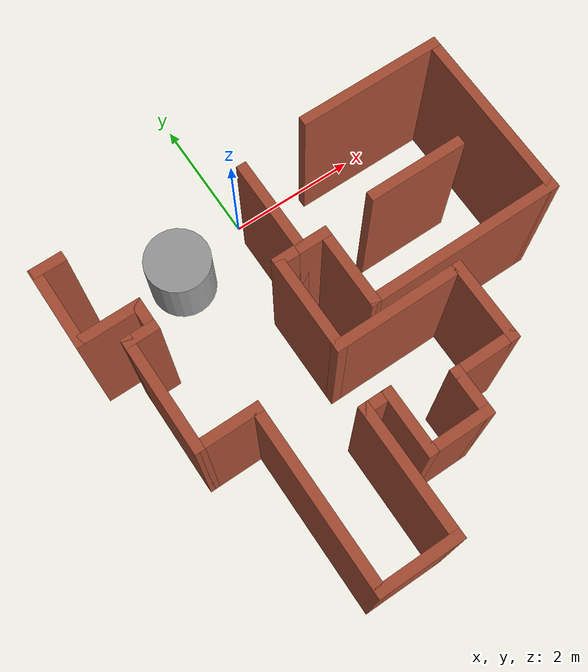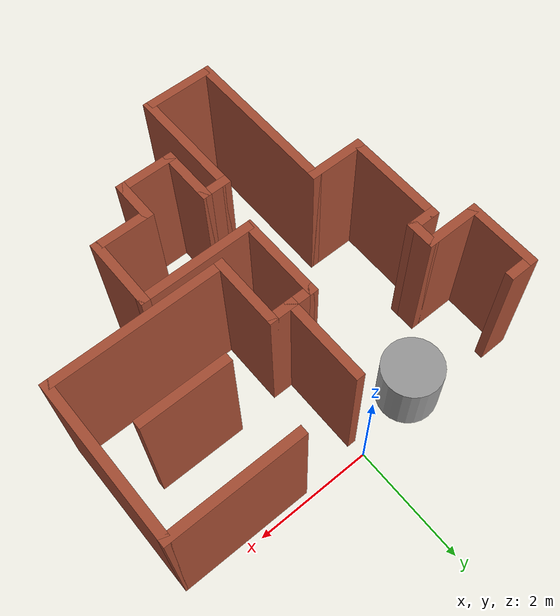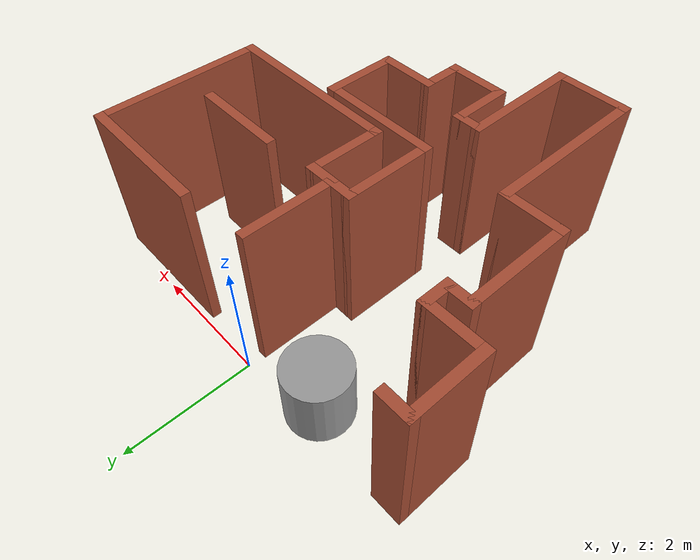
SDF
<sdf version="1.6">
 <model name="map_40">
  <link name="Wall_18">
   <pose>-2.8 -0.077977 0 0 -0 3.14159</pose>
   <visual name="Wall_18_Visual">
    <pose>0 0 1.25 0 -0 0</pose>
    <geometry><box><size>0.5 0.15 2.5</size></box></geometry>
    <material>
     <script><uri>file://media/materials/scripts/gazebo.material</uri><name>Gazebo/Bricks</name></script>
     <ambient>1 1 1 1</ambient>
     <shader type="pixel"/>
    </material>
    <meta><layer>0</layer></meta>
   </visual>
   <collision name="Wall_18_Collision">
    <pose>0 0 1.25 0 -0 0</pose>
    <geometry><box><size>0.5 0.15 2.5</size></box></geometry>
    <surface>
     <friction>
      <ode><mu>1</mu><mu2>1</mu2><fdir1>0 0 0</fdir1><slip1>0</slip1><slip2>0</slip2></ode>
      <torsional>
       <coefficient>1</coefficient>
       <patch_radius>0</patch_radius>
       <surface_radius>0</surface_radius>
       <use_patch_radius>1</use_patch_radius>
       <ode><slip>0</slip></ode>
      </torsional>
     </friction>
     <bounce><restitution_coefficient>0</restitution_coefficient><threshold>1e+06</threshold></bounce>
     <contact>
      <collide_without_contact>0</collide_without_contact>
      <collide_without_contact_bitmask>1</collide_without_contact_bitmask>
      <collide_bitmask>1</collide_bitmask>
      <ode>
       <soft_cfm>0</soft_cfm>
       <soft_erp>0.2</soft_erp>
       <kp>1e+13</kp>
       <kd>1</kd>
       <max_vel>0.01</max_vel>
       <min_depth>0</min_depth>
      </ode>
      <bullet>
       <split_impulse>1</split_impulse>
       <split_impulse_penetration_threshold>-0.01</split_impulse_penetration_threshold>
       <soft_cfm>0</soft_cfm>
       <soft_erp>0.2</soft_erp>
       <kp>1e+13</kp>
       <kd>1</kd>
      </bullet>
     </contact>
    </surface>
   </collision>
  </link>
  <link name="Wall_19">
   <pose>-2.975 -0.627977 0 0 0 -1.5708</pose>
   <visual name="Wall_19_Visual">
    <pose>0 0 1.25 0 -0 0</pose>
    <geometry><box><size>1.25 0.15 2.5</size></box></geometry>
    <material>
     <script><uri>file://media/materials/scripts/gazebo.material</uri><name>Gazebo/Bricks</name></script>
     <ambient>1 1 1 1</ambient>
     <shader type="pixel"/>
    </material>
    <meta><layer>0</layer></meta>
   </visual>
   <collision name="Wall_19_Collision">
    <pose>0 0 1.25 0 -0 0</pose>
    <geometry><box><size>1.25 0.15 2.5</size></box></geometry>
    <surface>
     <friction>
      <ode><mu>1</mu><mu2>1</mu2><fdir1>0 0 0</fdir1><slip1>0</slip1><slip2>0</slip2></ode>
      <torsional>
       <coefficient>1</coefficient>
       <patch_radius>0</patch_radius>
       <surface_radius>0</surface_radius>
       <use_patch_radius>1</use_patch_radius>
       <ode><slip>0</slip></ode>
      </torsional>
     </friction>
     <bounce><restitution_coefficient>0</restitution_coefficient><threshold>1e+06</threshold></bounce>
     <contact>
      <collide_without_contact>0</collide_without_contact>
      <collide_without_contact_bitmask>1</collide_without_contact_bitmask>
      <collide_bitmask>1</collide_bitmask>
      <ode>
       <soft_cfm>0</soft_cfm>
       <soft_erp>0.2</soft_erp>
       <kp>1e+13</kp>
       <kd>1</kd>
       <max_vel>0.01</max_vel>
       <min_depth>0</min_depth>
      </ode>
      <bullet>
       <split_impulse>1</split_impulse>
       <split_impulse_penetration_threshold>-0.01</split_impulse_penetration_threshold>
       <soft_cfm>0</soft_cfm>
       <soft_erp>0.2</soft_erp>
       <kp>1e+13</kp>
       <kd>1</kd>
      </bullet>
     </contact>
    </surface>
   </collision>
  </link>
  <link name="Wall_20">
   <pose>-2.55 -1.17798 0 0 -0 0</pose>
   <visual name="Wall_20_Visual">
    <pose>0 0 1.25 0 -0 0</pose>
    <geometry><box><size>1 0.15 2.5</size></box></geometry>
    <material>
     <script><uri>file://media/materials/scripts/gazebo.material</uri><name>Gazebo/Bricks</name></script>
     <ambient>1 1 1 1</ambient>
     <shader type="pixel"/>
    </material>
    <meta><layer>0</layer></meta>
   </visual>
   <collision name="Wall_20_Collision">
    <pose>0 0 1.25 0 -0 0</pose>
    <geometry><box><size>1 0.15 2.5</size></box></geometry>
    <surface>
     <friction>
      <ode><mu>1</mu><mu2>1</mu2><fdir1>0 0 0</fdir1><slip1>0</slip1><slip2>0</slip2></ode>
      <torsional>
       <coefficient>1</coefficient>
       <patch_radius>0</patch_radius>
       <surface_radius>0</surface_radius>
       <use_patch_radius>1</use_patch_radius>
       <ode><slip>0</slip></ode>
      </torsional>
     </friction>
     <bounce><restitution_coefficient>0</restitution_coefficient><threshold>1e+06</threshold></bounce>
     <contact>
      <collide_without_contact>0</collide_without_contact>
      <collide_without_contact_bitmask>1</collide_without_contact_bitmask>
      <collide_bitmask>1</collide_bitmask>
      <ode>
       <soft_cfm>0</soft_cfm>
       <soft_erp>0.2</soft_erp>
       <kp>1e+13</kp>
       <kd>1</kd>
       <max_vel>0.01</max_vel>
       <min_depth>0</min_depth>
      </ode>
      <bullet>
       <split_impulse>1</split_impulse>
       <split_impulse_penetration_threshold>-0.01</split_impulse_penetration_threshold>
       <soft_cfm>0</soft_cfm>
       <soft_erp>0.2</soft_erp>
       <kp>1e+13</kp>
       <kd>1</kd>
      </bullet>
     </contact>
    </surface>
   </collision>
  </link>
  <link name="Wall_21">
   <pose>-2.125 -1.35298 0 0 0 -1.5708</pose>
   <visual name="Wall_21_Visual">
    <pose>0 0 1.25 0 -0 0</pose>
    <geometry><box><size>0.5 0.15 2.5</size></box></geometry>
    <material>
     <script><uri>file://media/materials/scripts/gazebo.material</uri><name>Gazebo/Bricks</name></script>
     <ambient>1 1 1 1</ambient>
     <shader type="pixel"/>
    </material>
    <meta><layer>0</layer></meta>
   </visual>
   <collision name="Wall_21_Collision">
    <pose>0 0 1.25 0 -0 0</pose>
    <geometry><box><size>0.5 0.15 2.5</size></box></geometry>
    <surface>
     <friction>
      <ode><mu>1</mu><mu2>1</mu2><fdir1>0 0 0</fdir1><slip1>0</slip1><slip2>0</slip2></ode>
      <torsional>
       <coefficient>1</coefficient>
       <patch_radius>0</patch_radius>
       <surface_radius>0</surface_radius>
       <use_patch_radius>1</use_patch_radius>
       <ode><slip>0</slip></ode>
      </torsional>
     </friction>
     <bounce><restitution_coefficient>0</restitution_coefficient><threshold>1e+06</threshold></bounce>
     <contact>
      <collide_without_contact>0</collide_without_contact>
      <collide_without_contact_bitmask>1</collide_without_contact_bitmask>
      <collide_bitmask>1</collide_bitmask>
      <ode>
       <soft_cfm>0</soft_cfm>
       <soft_erp>0.2</soft_erp>
       <kp>1e+13</kp>
       <kd>1</kd>
       <max_vel>0.01</max_vel>
       <min_depth>0</min_depth>
      </ode>
      <bullet>
       <split_impulse>1</split_impulse>
       <split_impulse_penetration_threshold>-0.01</split_impulse_penetration_threshold>
       <soft_cfm>0</soft_cfm>
       <soft_erp>0.2</soft_erp>
       <kp>1e+13</kp>
       <kd>1</kd>
      </bullet>
     </contact>
    </surface>
   </collision>
  </link>
  <link name="Wall_22">
   <pose>-2.3 -1.52798 0 0 -0 3.14159</pose>
   <visual name="Wall_22_Visual">
    <pose>0 0 1.25 0 -0 0</pose>
    <geometry><box><size>0.5 0.15 2.5</size></box></geometry>
    <material>
     <script><uri>file://media/materials/scripts/gazebo.material</uri><name>Gazebo/Bricks</name></script>
     <ambient>1 1 1 1</ambient>
     <shader type="pixel"/>
    </material>
    <meta><layer>0</layer></meta>
   </visual>
   <collision name="Wall_22_Collision">
    <pose>0 0 1.25 0 -0 0</pose>
    <geometry><box><size>0.5 0.15 2.5</size></box></geometry>
    <surface>
     <friction>
      <ode><mu>1</mu><mu2>1</mu2><fdir1>0 0 0</fdir1><slip1>0</slip1><slip2>0</slip2></ode>
      <torsional>
       <coefficient>1</coefficient>
       <patch_radius>0</patch_radius>
       <surface_radius>0</surface_radius>
       <use_patch_radius>1</use_patch_radius>
       <ode><slip>0</slip></ode>
      </torsional>
     </friction>
     <bounce><restitution_coefficient>0</restitution_coefficient><threshold>1e+06</threshold></bounce>
     <contact>
      <collide_without_contact>0</collide_without_contact>
      <collide_without_contact_bitmask>1</collide_without_contact_bitmask>
      <collide_bitmask>1</collide_bitmask>
      <ode>
       <soft_cfm>0</soft_cfm>
       <soft_erp>0.2</soft_erp>
       <kp>1e+13</kp>
       <kd>1</kd>
       <max_vel>0.01</max_vel>
       <min_depth>0</min_depth>
      </ode>
      <bullet>
       <split_impulse>1</split_impulse>
       <split_impulse_penetration_threshold>-0.01</split_impulse_penetration_threshold>
       <soft_cfm>0</soft_cfm>
       <soft_erp>0.2</soft_erp>
       <kp>1e+13</kp>
       <kd>1</kd>
      </bullet>
     </contact>
    </surface>
   </collision>
  </link>
  <link name="Wall_23">
   <pose>-2.475 -2.32798 0 0 0 -1.5708</pose>
   <visual name="Wall_23_Visual">
    <pose>0 0 1.25 0 -0 0</pose>
    <geometry><box><size>1.75 0.15 2.5</size></box></geometry>
    <material>
     <script><uri>file://media/materials/scripts/gazebo.material</uri><name>Gazebo/Bricks</name></script>
     <ambient>1 1 1 1</ambient>
     <shader type="pixel"/>
    </material>
    <meta><layer>0</layer></meta>
   </visual>
   <collision name="Wall_23_Collision">
    <pose>0 0 1.25 0 -0 0</pose>
    <geometry><box><size>1.75 0.15 2.5</size></box></geometry>
    <surface>
     <friction>
      <ode><mu>1</mu><mu2>1</mu2><fdir1>0 0 0</fdir1><slip1>0</slip1><slip2>0</slip2></ode>
      <torsional>
       <coefficient>1</coefficient>
       <patch_radius>0</patch_radius>
       <surface_radius>0</surface_radius>
       <use_patch_radius>1</use_patch_radius>
       <ode><slip>0</slip></ode>
      </torsional>
     </friction>
     <bounce><restitution_coefficient>0</restitution_coefficient><threshold>1e+06</threshold></bounce>
     <contact>
      <collide_without_contact>0</collide_without_contact>
      <collide_without_contact_bitmask>1</collide_without_contact_bitmask>
      <collide_bitmask>1</collide_bitmask>
      <ode>
       <soft_cfm>0</soft_cfm>
       <soft_erp>0.2</soft_erp>
       <kp>1e+13</kp>
       <kd>1</kd>
       <max_vel>0.01</max_vel>
       <min_depth>0</min_depth>
      </ode>
      <bullet>
       <split_impulse>1</split_impulse>
       <split_impulse_penetration_threshold>-0.01</split_impulse_penetration_threshold>
       <soft_cfm>0</soft_cfm>
       <soft_erp>0.2</soft_erp>
       <kp>1e+13</kp>
       <kd>1</kd>
      </bullet>
     </contact>
    </surface>
   </collision>
  </link>
  <link name="Wall_24">
   <pose>-2.05 -3.12798 0 0 -0 0</pose>
   <visual name="Wall_24_Visual">
    <pose>0 0 1.25 0 -0 0</pose>
    <geometry><box><size>1 0.15 2.5</size></box></geometry>
    <material>
     <script><uri>file://media/materials/scripts/gazebo.material</uri><name>Gazebo/Bricks</name></script>
     <ambient>1 1 1 1</ambient>
     <shader type="pixel"/>
    </material>
    <meta><layer>0</layer></meta>
   </visual>
   <collision name="Wall_24_Collision">
    <pose>0 0 1.25 0 -0 0</pose>
    <geometry><box><size>1 0.15 2.5</size></box></geometry>
    <surface>
     <friction>
      <ode><mu>1</mu><mu2>1</mu2><fdir1>0 0 0</fdir1><slip1>0</slip1><slip2>0</slip2></ode>
      <torsional>
       <coefficient>1</coefficient>
       <patch_radius>0</patch_radius>
       <surface_radius>0</surface_radius>
       <use_patch_radius>1</use_patch_radius>
       <ode><slip>0</slip></ode>
      </torsional>
     </friction>
     <bounce><restitution_coefficient>0</restitution_coefficient><threshold>1e+06</threshold></bounce>
     <contact>
      <collide_without_contact>0</collide_without_contact>
      <collide_without_contact_bitmask>1</collide_without_contact_bitmask>
      <collide_bitmask>1</collide_bitmask>
      <ode>
       <soft_cfm>0</soft_cfm>
       <soft_erp>0.2</soft_erp>
       <kp>1e+13</kp>
       <kd>1</kd>
       <max_vel>0.01</max_vel>
       <min_depth>0</min_depth>
      </ode>
      <bullet>
       <split_impulse>1</split_impulse>
       <split_impulse_penetration_threshold>-0.01</split_impulse_penetration_threshold>
       <soft_cfm>0</soft_cfm>
       <soft_erp>0.2</soft_erp>
       <kp>1e+13</kp>
       <kd>1</kd>
      </bullet>
     </contact>
    </surface>
   </collision>
  </link>
  <link name="Wall_25">
   <pose>-1.625 -4.42798 0 0 0 -1.5708</pose>
   <visual name="Wall_25_Visual">
    <pose>0 0 1.25 0 -0 0</pose>
    <geometry><box><size>2.75 0.15 2.5</size></box></geometry>
    <material>
     <script><uri>file://media/materials/scripts/gazebo.material</uri><name>Gazebo/Bricks</name></script>
     <ambient>1 1 1 1</ambient>
     <shader type="pixel"/>
    </material>
    <meta><layer>0</layer></meta>
   </visual>
   <collision name="Wall_25_Collision">
    <pose>0 0 1.25 0 -0 0</pose>
    <geometry><box><size>2.75 0.15 2.5</size></box></geometry>
    <surface>
     <friction>
      <ode><mu>1</mu><mu2>1</mu2><fdir1>0 0 0</fdir1><slip1>0</slip1><slip2>0</slip2></ode>
      <torsional>
       <coefficient>1</coefficient>
       <patch_radius>0</patch_radius>
       <surface_radius>0</surface_radius>
       <use_patch_radius>1</use_patch_radius>
       <ode><slip>0</slip></ode>
      </torsional>
     </friction>
     <bounce><restitution_coefficient>0</restitution_coefficient><threshold>1e+06</threshold></bounce>
     <contact>
      <collide_without_contact>0</collide_without_contact>
      <collide_without_contact_bitmask>1</collide_without_contact_bitmask>
      <collide_bitmask>1</collide_bitmask>
      <ode>
       <soft_cfm>0</soft_cfm>
       <soft_erp>0.2</soft_erp>
       <kp>1e+13</kp>
       <kd>1</kd>
       <max_vel>0.01</max_vel>
       <min_depth>0</min_depth>
      </ode>
      <bullet>
       <split_impulse>1</split_impulse>
       <split_impulse_penetration_threshold>-0.01</split_impulse_penetration_threshold>
       <soft_cfm>0</soft_cfm>
       <soft_erp>0.2</soft_erp>
       <kp>1e+13</kp>
       <kd>1</kd>
      </bullet>
     </contact>
    </surface>
   </collision>
  </link>
  <link name="Wall_26">
   <pose>-1.075 -5.72798 0 0 -0 0</pose>
   <visual name="Wall_26_Visual">
    <pose>0 0 1.25 0 -0 0</pose>
    <geometry><box><size>1.25 0.15 2.5</size></box></geometry>
    <material>
     <script><uri>file://media/materials/scripts/gazebo.material</uri><name>Gazebo/Bricks</name></script>
     <ambient>1 1 1 1</ambient>
     <shader type="pixel"/>
    </material>
    <meta><layer>0</layer></meta>
   </visual>
   <collision name="Wall_26_Collision">
    <pose>0 0 1.25 0 -0 0</pose>
    <geometry><box><size>1.25 0.15 2.5</size></box></geometry>
    <surface>
     <friction>
      <ode><mu>1</mu><mu2>1</mu2><fdir1>0 0 0</fdir1><slip1>0</slip1><slip2>0</slip2></ode>
      <torsional>
       <coefficient>1</coefficient>
       <patch_radius>0</patch_radius>
       <surface_radius>0</surface_radius>
       <use_patch_radius>1</use_patch_radius>
       <ode><slip>0</slip></ode>
      </torsional>
     </friction>
     <bounce><restitution_coefficient>0</restitution_coefficient><threshold>1e+06</threshold></bounce>
     <contact>
      <collide_without_contact>0</collide_without_contact>
      <collide_without_contact_bitmask>1</collide_without_contact_bitmask>
      <collide_bitmask>1</collide_bitmask>
      <ode>
       <soft_cfm>0</soft_cfm>
       <soft_erp>0.2</soft_erp>
       <kp>1e+13</kp>
       <kd>1</kd>
       <max_vel>0.01</max_vel>
       <min_depth>0</min_depth>
      </ode>
      <bullet>
       <split_impulse>1</split_impulse>
       <split_impulse_penetration_threshold>-0.01</split_impulse_penetration_threshold>
       <soft_cfm>0</soft_cfm>
       <soft_erp>0.2</soft_erp>
       <kp>1e+13</kp>
       <kd>1</kd>
      </bullet>
     </contact>
    </surface>
   </collision>
  </link>
  <link name="Wall_27">
   <pose>-0.525 -4.80298 0 0 -0 1.5708</pose>
   <visual name="Wall_27_Visual">
    <pose>0 0 1.25 0 -0 0</pose>
    <geometry><box><size>2 0.15 2.5</size></box></geometry>
    <material>
     <script><uri>file://media/materials/scripts/gazebo.material</uri><name>Gazebo/Bricks</name></script>
     <ambient>1 1 1 1</ambient>
     <shader type="pixel"/>
    </material>
    <meta><layer>0</layer></meta>
   </visual>
   <collision name="Wall_27_Collision">
    <pose>0 0 1.25 0 -0 0</pose>
    <geometry><box><size>2 0.15 2.5</size></box></geometry>
    <surface>
     <friction>
      <ode><mu>1</mu><mu2>1</mu2><fdir1>0 0 0</fdir1><slip1>0</slip1><slip2>0</slip2></ode>
      <torsional>
       <coefficient>1</coefficient>
       <patch_radius>0</patch_radius>
       <surface_radius>0</surface_radius>
       <use_patch_radius>1</use_patch_radius>
       <ode><slip>0</slip></ode>
      </torsional>
     </friction>
     <bounce><restitution_coefficient>0</restitution_coefficient><threshold>1e+06</threshold></bounce>
     <contact>
      <collide_without_contact>0</collide_without_contact>
      <collide_without_contact_bitmask>1</collide_without_contact_bitmask>
      <collide_bitmask>1</collide_bitmask>
      <ode>
       <soft_cfm>0</soft_cfm>
       <soft_erp>0.2</soft_erp>
       <kp>1e+13</kp>
       <kd>1</kd>
       <max_vel>0.01</max_vel>
       <min_depth>0</min_depth>
      </ode>
      <bullet>
       <split_impulse>1</split_impulse>
       <split_impulse_penetration_threshold>-0.01</split_impulse_penetration_threshold>
       <soft_cfm>0</soft_cfm>
       <soft_erp>0.2</soft_erp>
       <kp>1e+13</kp>
       <kd>1</kd>
      </bullet>
     </contact>
    </surface>
   </collision>
  </link>
  <link name="Wall_28">
   <pose>-0.35 -3.87798 0 0 -0 0</pose>
   <visual name="Wall_28_Visual">
    <pose>0 0 1.25 0 -0 0</pose>
    <geometry><box><size>0.5 0.15 2.5</size></box></geometry>
    <material>
     <script><uri>file://media/materials/scripts/gazebo.material</uri><name>Gazebo/Bricks</name></script>
     <ambient>1 1 1 1</ambient>
     <shader type="pixel"/>
    </material>
    <meta><layer>0</layer></meta>
   </visual>
   <collision name="Wall_28_Collision">
    <pose>0 0 1.25 0 -0 0</pose>
    <geometry><box><size>0.5 0.15 2.5</size></box></geometry>
    <surface>
     <friction>
      <ode><mu>1</mu><mu2>1</mu2><fdir1>0 0 0</fdir1><slip1>0</slip1><slip2>0</slip2></ode>
      <torsional>
       <coefficient>1</coefficient>
       <patch_radius>0</patch_radius>
       <surface_radius>0</surface_radius>
       <use_patch_radius>1</use_patch_radius>
       <ode><slip>0</slip></ode>
      </torsional>
     </friction>
     <bounce><restitution_coefficient>0</restitution_coefficient><threshold>1e+06</threshold></bounce>
     <contact>
      <collide_without_contact>0</collide_without_contact>
      <collide_without_contact_bitmask>1</collide_without_contact_bitmask>
      <collide_bitmask>1</collide_bitmask>
      <ode>
       <soft_cfm>0</soft_cfm>
       <soft_erp>0.2</soft_erp>
       <kp>1e+13</kp>
       <kd>1</kd>
       <max_vel>0.01</max_vel>
       <min_depth>0</min_depth>
      </ode>
      <bullet>
       <split_impulse>1</split_impulse>
       <split_impulse_penetration_threshold>-0.01</split_impulse_penetration_threshold>
       <soft_cfm>0</soft_cfm>
       <soft_erp>0.2</soft_erp>
       <kp>1e+13</kp>
       <kd>1</kd>
      </bullet>
     </contact>
    </surface>
   </collision>
  </link>
  <link name="Wall_29">
   <pose>-0.175 -4.30298 0 0 0 -1.5708</pose>
   <visual name="Wall_29_Visual">
    <pose>0 0 1.25 0 -0 0</pose>
    <geometry><box><size>1 0.15 2.5</size></box></geometry>
    <material>
     <script><uri>file://media/materials/scripts/gazebo.material</uri><name>Gazebo/Bricks</name></script>
     <ambient>1 1 1 1</ambient>
     <shader type="pixel"/>
    </material>
    <meta><layer>0</layer></meta>
   </visual>
   <collision name="Wall_29_Collision">
    <pose>0 0 1.25 0 -0 0</pose>
    <geometry><box><size>1 0.15 2.5</size></box></geometry>
    <surface>
     <friction>
      <ode><mu>1</mu><mu2>1</mu2><fdir1>0 0 0</fdir1><slip1>0</slip1><slip2>0</slip2></ode>
      <torsional>
       <coefficient>1</coefficient>
       <patch_radius>0</patch_radius>
       <surface_radius>0</surface_radius>
       <use_patch_radius>1</use_patch_radius>
       <ode><slip>0</slip></ode>
      </torsional>
     </friction>
     <bounce><restitution_coefficient>0</restitution_coefficient><threshold>1e+06</threshold></bounce>
     <contact>
      <collide_without_contact>0</collide_without_contact>
      <collide_without_contact_bitmask>1</collide_without_contact_bitmask>
      <collide_bitmask>1</collide_bitmask>
      <ode>
       <soft_cfm>0</soft_cfm>
       <soft_erp>0.2</soft_erp>
       <kp>1e+13</kp>
       <kd>1</kd>
       <max_vel>0.01</max_vel>
       <min_depth>0</min_depth>
      </ode>
      <bullet>
       <split_impulse>1</split_impulse>
       <split_impulse_penetration_threshold>-0.01</split_impulse_penetration_threshold>
       <soft_cfm>0</soft_cfm>
       <soft_erp>0.2</soft_erp>
       <kp>1e+13</kp>
       <kd>1</kd>
      </bullet>
     </contact>
    </surface>
   </collision>
  </link>
  <link name="Wall_30">
   <pose>0.25 -4.72798 0 0 -0 0</pose>
   <visual name="Wall_30_Visual">
    <pose>0 0 1.25 0 -0 0</pose>
    <geometry><box><size>1 0.15 2.5</size></box></geometry>
    <material>
     <script><uri>file://media/materials/scripts/gazebo.material</uri><name>Gazebo/Bricks</name></script>
     <ambient>1 1 1 1</ambient>
     <shader type="pixel"/>
    </material>
    <meta><layer>0</layer></meta>
   </visual>
   <collision name="Wall_30_Collision">
    <pose>0 0 1.25 0 -0 0</pose>
    <geometry><box><size>1 0.15 2.5</size></box></geometry>
    <surface>
     <friction>
      <ode><mu>1</mu><mu2>1</mu2><fdir1>0 0 0</fdir1><slip1>0</slip1><slip2>0</slip2></ode>
      <torsional>
       <coefficient>1</coefficient>
       <patch_radius>0</patch_radius>
       <surface_radius>0</surface_radius>
       <use_patch_radius>1</use_patch_radius>
       <ode><slip>0</slip></ode>
      </torsional>
     </friction>
     <bounce><restitution_coefficient>0</restitution_coefficient><threshold>1e+06</threshold></bounce>
     <contact>
      <collide_without_contact>0</collide_without_contact>
      <collide_without_contact_bitmask>1</collide_without_contact_bitmask>
      <collide_bitmask>1</collide_bitmask>
      <ode>
       <soft_cfm>0</soft_cfm>
       <soft_erp>0.2</soft_erp>
       <kp>1e+13</kp>
       <kd>1</kd>
       <max_vel>0.01</max_vel>
       <min_depth>0</min_depth>
      </ode>
      <bullet>
       <split_impulse>1</split_impulse>
       <split_impulse_penetration_threshold>-0.01</split_impulse_penetration_threshold>
       <soft_cfm>0</soft_cfm>
       <soft_erp>0.2</soft_erp>
       <kp>1e+13</kp>
       <kd>1</kd>
      </bullet>
     </contact>
    </surface>
   </collision>
  </link>
  <link name="Wall_31">
   <pose>0.675 -4.42798 0 0 -0 1.5708</pose>
   <visual name="Wall_31_Visual">
    <pose>0 0 1.25 0 -0 0</pose>
    <geometry><box><size>0.75 0.15 2.5</size></box></geometry>
    <material>
     <script><uri>file://media/materials/scripts/gazebo.material</uri><name>Gazebo/Bricks</name></script>
     <ambient>1 1 1 1</ambient>
     <shader type="pixel"/>
    </material>
    <meta><layer>0</layer></meta>
   </visual>
   <collision name="Wall_31_Collision">
    <pose>0 0 1.25 0 -0 0</pose>
    <geometry><box><size>0.75 0.15 2.5</size></box></geometry>
    <surface>
     <friction>
      <ode><mu>1</mu><mu2>1</mu2><fdir1>0 0 0</fdir1><slip1>0</slip1><slip2>0</slip2></ode>
      <torsional>
       <coefficient>1</coefficient>
       <patch_radius>0</patch_radius>
       <surface_radius>0</surface_radius>
       <use_patch_radius>1</use_patch_radius>
       <ode><slip>0</slip></ode>
      </torsional>
     </friction>
     <bounce><restitution_coefficient>0</restitution_coefficient><threshold>1e+06</threshold></bounce>
     <contact>
      <collide_without_contact>0</collide_without_contact>
      <collide_without_contact_bitmask>1</collide_without_contact_bitmask>
      <collide_bitmask>1</collide_bitmask>
      <ode>
       <soft_cfm>0</soft_cfm>
       <soft_erp>0.2</soft_erp>
       <kp>1e+13</kp>
       <kd>1</kd>
       <max_vel>0.01</max_vel>
       <min_depth>0</min_depth>
      </ode>
      <bullet>
       <split_impulse>1</split_impulse>
       <split_impulse_penetration_threshold>-0.01</split_impulse_penetration_threshold>
       <soft_cfm>0</soft_cfm>
       <soft_erp>0.2</soft_erp>
       <kp>1e+13</kp>
       <kd>1</kd>
      </bullet>
     </contact>
    </surface>
   </collision>
  </link>
  <link name="Wall_32">
   <pose>1.1 -4.12798 0 0 -0 0</pose>
   <visual name="Wall_32_Visual">
    <pose>0 0 1.25 0 -0 0</pose>
    <geometry><box><size>1 0.15 2.5</size></box></geometry>
    <material>
     <script><uri>file://media/materials/scripts/gazebo.material</uri><name>Gazebo/Bricks</name></script>
     <ambient>1 1 1 1</ambient>
     <shader type="pixel"/>
    </material>
    <meta><layer>0</layer></meta>
   </visual>
   <collision name="Wall_32_Collision">
    <pose>0 0 1.25 0 -0 0</pose>
    <geometry><box><size>1 0.15 2.5</size></box></geometry>
    <surface>
     <friction>
      <ode><mu>1</mu><mu2>1</mu2><fdir1>0 0 0</fdir1><slip1>0</slip1><slip2>0</slip2></ode>
      <torsional>
       <coefficient>1</coefficient>
       <patch_radius>0</patch_radius>
       <surface_radius>0</surface_radius>
       <use_patch_radius>1</use_patch_radius>
       <ode><slip>0</slip></ode>
      </torsional>
     </friction>
     <bounce><restitution_coefficient>0</restitution_coefficient><threshold>1e+06</threshold></bounce>
     <contact>
      <collide_without_contact>0</collide_without_contact>
      <collide_without_contact_bitmask>1</collide_without_contact_bitmask>
      <collide_bitmask>1</collide_bitmask>
      <ode>
       <soft_cfm>0</soft_cfm>
       <soft_erp>0.2</soft_erp>
       <kp>1e+13</kp>
       <kd>1</kd>
       <max_vel>0.01</max_vel>
       <min_depth>0</min_depth>
      </ode>
      <bullet>
       <split_impulse>1</split_impulse>
       <split_impulse_penetration_threshold>-0.01</split_impulse_penetration_threshold>
       <soft_cfm>0</soft_cfm>
       <soft_erp>0.2</soft_erp>
       <kp>1e+13</kp>
       <kd>1</kd>
      </bullet>
     </contact>
    </surface>
   </collision>
  </link>
  <link name="Wall_33">
   <pose>1.525 -3.57798 0 0 -0 1.5708</pose>
   <visual name="Wall_33_Visual">
    <pose>0 0 1.25 0 -0 0</pose>
    <geometry><box><size>1.25 0.15 2.5</size></box></geometry>
    <material>
     <script><uri>file://media/materials/scripts/gazebo.material</uri><name>Gazebo/Bricks</name></script>
     <ambient>1 1 1 1</ambient>
     <shader type="pixel"/>
    </material>
    <meta><layer>0</layer></meta>
   </visual>
   <collision name="Wall_33_Collision">
    <pose>0 0 1.25 0 -0 0</pose>
    <geometry><box><size>1.25 0.15 2.5</size></box></geometry>
    <surface>
     <friction>
      <ode><mu>1</mu><mu2>1</mu2><fdir1>0 0 0</fdir1><slip1>0</slip1><slip2>0</slip2></ode>
      <torsional>
       <coefficient>1</coefficient>
       <patch_radius>0</patch_radius>
       <surface_radius>0</surface_radius>
       <use_patch_radius>1</use_patch_radius>
       <ode><slip>0</slip></ode>
      </torsional>
     </friction>
     <bounce><restitution_coefficient>0</restitution_coefficient><threshold>1e+06</threshold></bounce>
     <contact>
      <collide_without_contact>0</collide_without_contact>
      <collide_without_contact_bitmask>1</collide_without_contact_bitmask>
      <collide_bitmask>1</collide_bitmask>
      <ode>
       <soft_cfm>0</soft_cfm>
       <soft_erp>0.2</soft_erp>
       <kp>1e+13</kp>
       <kd>1</kd>
       <max_vel>0.01</max_vel>
       <min_depth>0</min_depth>
      </ode>
      <bullet>
       <split_impulse>1</split_impulse>
       <split_impulse_penetration_threshold>-0.01</split_impulse_penetration_threshold>
       <soft_cfm>0</soft_cfm>
       <soft_erp>0.2</soft_erp>
       <kp>1e+13</kp>
       <kd>1</kd>
      </bullet>
     </contact>
    </surface>
   </collision>
  </link>
  <link name="Wall_34">
   <pose>0.6 -3.02798 0 0 -0 3.14159</pose>
   <visual name="Wall_34_Visual">
    <pose>0 0 1.25 0 -0 0</pose>
    <geometry><box><size>2 0.15 2.5</size></box></geometry>
    <material>
     <script><uri>file://media/materials/scripts/gazebo.material</uri><name>Gazebo/Bricks</name></script>
     <ambient>1 1 1 1</ambient>
     <shader type="pixel"/>
    </material>
    <meta><layer>0</layer></meta>
   </visual>
   <collision name="Wall_34_Collision">
    <pose>0 0 1.25 0 -0 0</pose>
    <geometry><box><size>2 0.15 2.5</size></box></geometry>
    <surface>
     <friction>
      <ode><mu>1</mu><mu2>1</mu2><fdir1>0 0 0</fdir1><slip1>0</slip1><slip2>0</slip2></ode>
      <torsional>
       <coefficient>1</coefficient>
       <patch_radius>0</patch_radius>
       <surface_radius>0</surface_radius>
       <use_patch_radius>1</use_patch_radius>
       <ode><slip>0</slip></ode>
      </torsional>
     </friction>
     <bounce><restitution_coefficient>0</restitution_coefficient><threshold>1e+06</threshold></bounce>
     <contact>
      <collide_without_contact>0</collide_without_contact>
      <collide_without_contact_bitmask>1</collide_without_contact_bitmask>
      <collide_bitmask>1</collide_bitmask>
      <ode>
       <soft_cfm>0</soft_cfm>
       <soft_erp>0.2</soft_erp>
       <kp>1e+13</kp>
       <kd>1</kd>
       <max_vel>0.01</max_vel>
       <min_depth>0</min_depth>
      </ode>
      <bullet>
       <split_impulse>1</split_impulse>
       <split_impulse_penetration_threshold>-0.01</split_impulse_penetration_threshold>
       <soft_cfm>0</soft_cfm>
       <soft_erp>0.2</soft_erp>
       <kp>1e+13</kp>
       <kd>1</kd>
      </bullet>
     </contact>
    </surface>
   </collision>
  </link>
  <link name="Wall_35">
   <pose>-0.325 -2.35298 0 0 -0 1.5708</pose>
   <visual name="Wall_35_Visual">
    <pose>0 0 1.25 0 -0 0</pose>
    <geometry><box><size>1.5 0.15 2.5</size></box></geometry>
    <material>
     <script><uri>file://media/materials/scripts/gazebo.material</uri><name>Gazebo/Bricks</name></script>
     <ambient>1 1 1 1</ambient>
     <shader type="pixel"/>
    </material>
    <meta><layer>0</layer></meta>
   </visual>
   <collision name="Wall_35_Collision">
    <pose>0 0 1.25 0 -0 0</pose>
    <geometry><box><size>1.5 0.15 2.5</size></box></geometry>
    <surface>
     <friction>
      <ode><mu>1</mu><mu2>1</mu2><fdir1>0 0 0</fdir1><slip1>0</slip1><slip2>0</slip2></ode>
      <torsional>
       <coefficient>1</coefficient>
       <patch_radius>0</patch_radius>
       <surface_radius>0</surface_radius>
       <use_patch_radius>1</use_patch_radius>
       <ode><slip>0</slip></ode>
      </torsional>
     </friction>
     <bounce><restitution_coefficient>0</restitution_coefficient><threshold>1e+06</threshold></bounce>
     <contact>
      <collide_without_contact>0</collide_without_contact>
      <collide_without_contact_bitmask>1</collide_without_contact_bitmask>
      <collide_bitmask>1</collide_bitmask>
      <ode>
       <soft_cfm>0</soft_cfm>
       <soft_erp>0.2</soft_erp>
       <kp>1e+13</kp>
       <kd>1</kd>
       <max_vel>0.01</max_vel>
       <min_depth>0</min_depth>
      </ode>
      <bullet>
       <split_impulse>1</split_impulse>
       <split_impulse_penetration_threshold>-0.01</split_impulse_penetration_threshold>
       <soft_cfm>0</soft_cfm>
       <soft_erp>0.2</soft_erp>
       <kp>1e+13</kp>
       <kd>1</kd>
      </bullet>
     </contact>
    </surface>
   </collision>
  </link>
  <link name="Wall_36">
   <pose>-0.15 -1.67798 0 0 -0 0</pose>
   <visual name="Wall_36_Visual">
    <pose>0 0 1.25 0 -0 0</pose>
    <geometry><box><size>0.5 0.15 2.5</size></box></geometry>
    <material>
     <script><uri>file://media/materials/scripts/gazebo.material</uri><name>Gazebo/Bricks</name></script>
     <ambient>1 1 1 1</ambient>
     <shader type="pixel"/>
    </material>
    <meta><layer>0</layer></meta>
   </visual>
   <collision name="Wall_36_Collision">
    <pose>0 0 1.25 0 -0 0</pose>
    <geometry><box><size>0.5 0.15 2.5</size></box></geometry>
    <surface>
     <friction>
      <ode><mu>1</mu><mu2>1</mu2><fdir1>0 0 0</fdir1><slip1>0</slip1><slip2>0</slip2></ode>
      <torsional>
       <coefficient>1</coefficient>
       <patch_radius>0</patch_radius>
       <surface_radius>0</surface_radius>
       <use_patch_radius>1</use_patch_radius>
       <ode><slip>0</slip></ode>
      </torsional>
     </friction>
     <bounce><restitution_coefficient>0</restitution_coefficient><threshold>1e+06</threshold></bounce>
     <contact>
      <collide_without_contact>0</collide_without_contact>
      <collide_without_contact_bitmask>1</collide_without_contact_bitmask>
      <collide_bitmask>1</collide_bitmask>
      <ode>
       <soft_cfm>0</soft_cfm>
       <soft_erp>0.2</soft_erp>
       <kp>1e+13</kp>
       <kd>1</kd>
       <max_vel>0.01</max_vel>
       <min_depth>0</min_depth>
      </ode>
      <bullet>
       <split_impulse>1</split_impulse>
       <split_impulse_penetration_threshold>-0.01</split_impulse_penetration_threshold>
       <soft_cfm>0</soft_cfm>
       <soft_erp>0.2</soft_erp>
       <kp>1e+13</kp>
       <kd>1</kd>
      </bullet>
     </contact>
    </surface>
   </collision>
  </link>
  <link name="Wall_37">
   <pose>0.025 -1.00298 0 0 -0 1.5708</pose>
   <visual name="Wall_37_Visual">
    <pose>0 0 1.25 0 -0 0</pose>
    <geometry><box><size>1.5 0.15 2.5</size></box></geometry>
    <material>
     <script><uri>file://media/materials/scripts/gazebo.material</uri><name>Gazebo/Bricks</name></script>
     <ambient>1 1 1 1</ambient>
     <shader type="pixel"/>
    </material>
    <meta><layer>0</layer></meta>
   </visual>
   <collision name="Wall_37_Collision">
    <pose>0 0 1.25 0 -0 0</pose>
    <geometry><box><size>1.5 0.15 2.5</size></box></geometry>
    <surface>
     <friction>
      <ode><mu>1</mu><mu2>1</mu2><fdir1>0 0 0</fdir1><slip1>0</slip1><slip2>0</slip2></ode>
      <torsional>
       <coefficient>1</coefficient>
       <patch_radius>0</patch_radius>
       <surface_radius>0</surface_radius>
       <use_patch_radius>1</use_patch_radius>
       <ode><slip>0</slip></ode>
      </torsional>
     </friction>
     <bounce><restitution_coefficient>0</restitution_coefficient><threshold>1e+06</threshold></bounce>
     <contact>
      <collide_without_contact>0</collide_without_contact>
      <collide_without_contact_bitmask>1</collide_without_contact_bitmask>
      <collide_bitmask>1</collide_bitmask>
      <ode>
       <soft_cfm>0</soft_cfm>
       <soft_erp>0.2</soft_erp>
       <kp>1e+13</kp>
       <kd>1</kd>
       <max_vel>0.01</max_vel>
       <min_depth>0</min_depth>
      </ode>
      <bullet>
       <split_impulse>1</split_impulse>
       <split_impulse_penetration_threshold>-0.01</split_impulse_penetration_threshold>
       <soft_cfm>0</soft_cfm>
       <soft_erp>0.2</soft_erp>
       <kp>1e+13</kp>
       <kd>1</kd>
      </bullet>
     </contact>
    </surface>
   </collision>
  </link>
  <link name="Wall_39">
   <pose>0.2 -1.67798 0 0 -0 0</pose>
   <visual name="Wall_39_Visual">
    <pose>0 0 1.25 0 -0 0</pose>
    <geometry><box><size>0.5 0.15 2.5</size></box></geometry>
    <material>
     <script><uri>file://media/materials/scripts/gazebo.material</uri><name>Gazebo/Bricks</name></script>
     <ambient>1 1 1 1</ambient>
     <shader type="pixel"/>
    </material>
    <meta><layer>0</layer></meta>
   </visual>
   <collision name="Wall_39_Collision">
    <pose>0 0 1.25 0 -0 0</pose>
    <geometry><box><size>0.5 0.15 2.5</size></box></geometry>
    <surface>
     <friction>
      <ode><mu>1</mu><mu2>1</mu2><fdir1>0 0 0</fdir1><slip1>0</slip1><slip2>0</slip2></ode>
      <torsional>
       <coefficient>1</coefficient>
       <patch_radius>0</patch_radius>
       <surface_radius>0</surface_radius>
       <use_patch_radius>1</use_patch_radius>
       <ode><slip>0</slip></ode>
      </torsional>
     </friction>
     <bounce><restitution_coefficient>0</restitution_coefficient><threshold>1e+06</threshold></bounce>
     <contact>
      <collide_without_contact>0</collide_without_contact>
      <collide_without_contact_bitmask>1</collide_without_contact_bitmask>
      <collide_bitmask>1</collide_bitmask>
      <ode>
       <soft_cfm>0</soft_cfm>
       <soft_erp>0.2</soft_erp>
       <kp>1e+13</kp>
       <kd>1</kd>
       <max_vel>0.01</max_vel>
       <min_depth>0</min_depth>
      </ode>
      <bullet>
       <split_impulse>1</split_impulse>
       <split_impulse_penetration_threshold>-0.01</split_impulse_penetration_threshold>
       <soft_cfm>0</soft_cfm>
       <soft_erp>0.2</soft_erp>
       <kp>1e+13</kp>
       <kd>1</kd>
      </bullet>
     </contact>
    </surface>
   </collision>
  </link>
  <link name="Wall_42">
   <pose>0.375 -2.22798 0 0 0 -1.5708</pose>
   <visual name="Wall_42_Visual">
    <pose>0 0 1.25 0 -0 0</pose>
    <geometry><box><size>1.25 0.15 2.5</size></box></geometry>
    <material>
     <script><uri>file://media/materials/scripts/gazebo.material</uri><name>Gazebo/Bricks</name></script>
     <ambient>1 1 1 1</ambient>
     <shader type="pixel"/>
    </material>
    <meta><layer>0</layer></meta>
   </visual>
   <collision name="Wall_42_Collision">
    <pose>0 0 1.25 0 -0 0</pose>
    <geometry><box><size>1.25 0.15 2.5</size></box></geometry>
    <surface>
     <friction>
      <ode><mu>1</mu><mu2>1</mu2><fdir1>0 0 0</fdir1><slip1>0</slip1><slip2>0</slip2></ode>
      <torsional>
       <coefficient>1</coefficient>
       <patch_radius>0</patch_radius>
       <surface_radius>0</surface_radius>
       <use_patch_radius>1</use_patch_radius>
       <ode><slip>0</slip></ode>
      </torsional>
     </friction>
     <bounce><restitution_coefficient>0</restitution_coefficient><threshold>1e+06</threshold></bounce>
     <contact>
      <collide_without_contact>0</collide_without_contact>
      <collide_without_contact_bitmask>1</collide_without_contact_bitmask>
      <collide_bitmask>1</collide_bitmask>
      <ode>
       <soft_cfm>0</soft_cfm>
       <soft_erp>0.2</soft_erp>
       <kp>1e+13</kp>
       <kd>1</kd>
       <max_vel>0.01</max_vel>
       <min_depth>0</min_depth>
      </ode>
      <bullet>
       <split_impulse>1</split_impulse>
       <split_impulse_penetration_threshold>-0.01</split_impulse_penetration_threshold>
       <soft_cfm>0</soft_cfm>
       <soft_erp>0.2</soft_erp>
       <kp>1e+13</kp>
       <kd>1</kd>
      </bullet>
     </contact>
    </surface>
   </collision>
  </link>
  <link name="Wall_43">
   <pose>1.8 -2.77798 0 0 -0 0</pose>
   <visual name="Wall_43_Visual">
    <pose>0 0 1.25 0 -0 0</pose>
    <geometry><box><size>3 0.15 2.5</size></box></geometry>
    <material>
     <script><uri>file://media/materials/scripts/gazebo.material</uri><name>Gazebo/Bricks</name></script>
     <ambient>1 1 1 1</ambient>
     <shader type="pixel"/>
    </material>
    <meta><layer>0</layer></meta>
   </visual>
   <collision name="Wall_43_Collision">
    <pose>0 0 1.25 0 -0 0</pose>
    <geometry><box><size>3 0.15 2.5</size></box></geometry>
    <surface>
     <friction>
      <ode><mu>1</mu><mu2>1</mu2><fdir1>0 0 0</fdir1><slip1>0</slip1><slip2>0</slip2></ode>
      <torsional>
       <coefficient>1</coefficient>
       <patch_radius>0</patch_radius>
       <surface_radius>0</surface_radius>
       <use_patch_radius>1</use_patch_radius>
       <ode><slip>0</slip></ode>
      </torsional>
     </friction>
     <bounce><restitution_coefficient>0</restitution_coefficient><threshold>1e+06</threshold></bounce>
     <contact>
      <collide_without_contact>0</collide_without_contact>
      <collide_without_contact_bitmask>1</collide_without_contact_bitmask>
      <collide_bitmask>1</collide_bitmask>
      <ode>
       <soft_cfm>0</soft_cfm>
       <soft_erp>0.2</soft_erp>
       <kp>1e+13</kp>
       <kd>1</kd>
       <max_vel>0.01</max_vel>
       <min_depth>0</min_depth>
      </ode>
      <bullet>
       <split_impulse>1</split_impulse>
       <split_impulse_penetration_threshold>-0.01</split_impulse_penetration_threshold>
       <soft_cfm>0</soft_cfm>
       <soft_erp>0.2</soft_erp>
       <kp>1e+13</kp>
       <kd>1</kd>
      </bullet>
     </contact>
    </surface>
   </collision>
  </link>
  <link name="Wall_44">
   <pose>3.225 -1.47798 0 0 -0 1.5708</pose>
   <visual name="Wall_44_Visual">
    <pose>0 0 1.25 0 -0 0</pose>
    <geometry><box><size>2.75 0.15 2.5</size></box></geometry>
    <material>
     <script><uri>file://media/materials/scripts/gazebo.material</uri><name>Gazebo/Bricks</name></script>
     <ambient>1 1 1 1</ambient>
     <shader type="pixel"/>
    </material>
    <meta><layer>0</layer></meta>
   </visual>
   <collision name="Wall_44_Collision">
    <pose>0 0 1.25 0 -0 0</pose>
    <geometry><box><size>2.75 0.15 2.5</size></box></geometry>
    <surface>
     <friction>
      <ode><mu>1</mu><mu2>1</mu2><fdir1>0 0 0</fdir1><slip1>0</slip1><slip2>0</slip2></ode>
      <torsional>
       <coefficient>1</coefficient>
       <patch_radius>0</patch_radius>
       <surface_radius>0</surface_radius>
       <use_patch_radius>1</use_patch_radius>
       <ode><slip>0</slip></ode>
      </torsional>
     </friction>
     <bounce><restitution_coefficient>0</restitution_coefficient><threshold>1e+06</threshold></bounce>
     <contact>
      <collide_without_contact>0</collide_without_contact>
      <collide_without_contact_bitmask>1</collide_without_contact_bitmask>
      <collide_bitmask>1</collide_bitmask>
      <ode>
       <soft_cfm>0</soft_cfm>
       <soft_erp>0.2</soft_erp>
       <kp>1e+13</kp>
       <kd>1</kd>
       <max_vel>0.01</max_vel>
       <min_depth>0</min_depth>
      </ode>
      <bullet>
       <split_impulse>1</split_impulse>
       <split_impulse_penetration_threshold>-0.01</split_impulse_penetration_threshold>
       <soft_cfm>0</soft_cfm>
       <soft_erp>0.2</soft_erp>
       <kp>1e+13</kp>
       <kd>1</kd>
      </bullet>
     </contact>
    </surface>
   </collision>
  </link>
  <link name="Wall_49">
   <pose>2.175 -0.177977 0 0 -0 3.14159</pose>
   <visual name="Wall_49_Visual">
    <pose>0 0 1.25 0 -0 0</pose>
    <geometry><box><size>2.25 0.15 2.5</size></box></geometry>
    <material>
     <script><uri>file://media/materials/scripts/gazebo.material</uri><name>Gazebo/Bricks</name></script>
     <ambient>1 1 1 1</ambient>
     <shader type="pixel"/>
    </material>
    <meta><layer>0</layer></meta>
   </visual>
   <collision name="Wall_49_Collision">
    <pose>0 0 1.25 0 -0 0</pose>
    <geometry><box><size>2.25 0.15 2.5</size></box></geometry>
    <surface>
     <friction>
      <ode><mu>1</mu><mu2>1</mu2><fdir1>0 0 0</fdir1><slip1>0</slip1><slip2>0</slip2></ode>
      <torsional>
       <coefficient>1</coefficient>
       <patch_radius>0</patch_radius>
       <surface_radius>0</surface_radius>
       <use_patch_radius>1</use_patch_radius>
       <ode><slip>0</slip></ode>
      </torsional>
     </friction>
     <bounce><restitution_coefficient>0</restitution_coefficient><threshold>1e+06</threshold></bounce>
     <contact>
      <collide_without_contact>0</collide_without_contact>
      <collide_without_contact_bitmask>1</collide_without_contact_bitmask>
      <collide_bitmask>1</collide_bitmask>
      <ode>
       <soft_cfm>0</soft_cfm>
       <soft_erp>0.2</soft_erp>
       <kp>1e+13</kp>
       <kd>1</kd>
       <max_vel>0.01</max_vel>
       <min_depth>0</min_depth>
      </ode>
      <bullet>
       <split_impulse>1</split_impulse>
       <split_impulse_penetration_threshold>-0.01</split_impulse_penetration_threshold>
       <soft_cfm>0</soft_cfm>
       <soft_erp>0.2</soft_erp>
       <kp>1e+13</kp>
       <kd>1</kd>
      </bullet>
     </contact>
    </surface>
   </collision>
  </link>
  <link name="Wall_74">
   <pose>1.90482 -1.58904 0 0 -0 0</pose>
   <visual name="Wall_74_Visual">
    <pose>0 0 1.25 0 -0 0</pose>
    <geometry><box><size>1.5 0.15 2.5</size></box></geometry>
    <material>
     <script><uri>file://media/materials/scripts/gazebo.material</uri><name>Gazebo/Bricks</name></script>
     <ambient>1 1 1 1</ambient>
     <shader type="pixel"/>
    </material>
    <meta><layer>0</layer></meta>
   </visual>
   <collision name="Wall_74_Collision">
    <pose>0 0 1.25 0 -0 0</pose>
    <geometry><box><size>1.5 0.15 2.5</size></box></geometry>
    <surface>
     <friction>
      <ode><mu>1</mu><mu2>1</mu2><fdir1>0 0 0</fdir1><slip1>0</slip1><slip2>0</slip2></ode>
      <torsional>
       <coefficient>1</coefficient>
       <patch_radius>0</patch_radius>
       <surface_radius>0</surface_radius>
       <use_patch_radius>1</use_patch_radius>
       <ode><slip>0</slip></ode>
      </torsional>
     </friction>
     <bounce><restitution_coefficient>0</restitution_coefficient><threshold>1e+06</threshold></bounce>
     <contact>
      <collide_without_contact>0</collide_without_contact>
      <collide_without_contact_bitmask>1</collide_without_contact_bitmask>
      <collide_bitmask>1</collide_bitmask>
      <ode>
       <soft_cfm>0</soft_cfm>
       <soft_erp>0.2</soft_erp>
       <kp>1e+13</kp>
       <kd>1</kd>
       <max_vel>0.01</max_vel>
       <min_depth>0</min_depth>
      </ode>
      <bullet>
       <split_impulse>1</split_impulse>
       <split_impulse_penetration_threshold>-0.01</split_impulse_penetration_threshold>
       <soft_cfm>0</soft_cfm>
       <soft_erp>0.2</soft_erp>
       <kp>1e+13</kp>
       <kd>1</kd>
      </bullet>
     </contact>
    </surface>
   </collision>
  </link>
  <link name="link_2">
   <inertial>
    <mass>1</mass>
    <inertia><ixx>0.145833</ixx><ixy>0</ixy><ixz>0</ixz><iyy>0.145833</iyy><iyz>0</iyz><izz>0.125</izz></inertia>
   </inertial>
   <pose>-1.19458 -0.323003 0.5 0 -0 0</pose>
   <visual name="visual">
    <geometry><cylinder><radius>0.5</radius><length>1</length></cylinder></geometry>
    <material>
     <lighting>1</lighting>
     <script><uri>file://media/materials/scripts/gazebo.material</uri><name>Gazebo/Grey</name></script>
     <shader type="pixel"/>
    </material>
   </visual>
   <collision name="collision">
    <geometry><cylinder><radius>0.5</radius><length>1</length></cylinder></geometry>
    <surface>
     <friction>
      <ode><mu>1</mu><mu2>1</mu2><fdir1>0 0 0</fdir1><slip1>0</slip1><slip2>0</slip2></ode>
      <torsional>
       <coefficient>1</coefficient>
       <patch_radius>0</patch_radius>
       <surface_radius>0</surface_radius>
       <use_patch_radius>1</use_patch_radius>
       <ode><slip>0</slip></ode>
      </torsional>
     </friction>
     <bounce><restitution_coefficient>0</restitution_coefficient><threshold>1e+06</threshold></bounce>
     <contact>
      <collide_without_contact>0</collide_without_contact>
      <collide_without_contact_bitmask>1</collide_without_contact_bitmask>
      <collide_bitmask>1</collide_bitmask>
      <ode>
       <soft_cfm>0</soft_cfm>
       <soft_erp>0.2</soft_erp>
       <kp>1e+13</kp>
       <kd>1</kd>
       <max_vel>0.01</max_vel>
       <min_depth>0</min_depth>
      </ode>
      <bullet>
       <split_impulse>1</split_impulse>
       <split_impulse_penetration_threshold>-0.01</split_impulse_penetration_threshold>
       <soft_cfm>0</soft_cfm>
       <soft_erp>0.2</soft_erp>
       <kp>1e+13</kp>
       <kd>1</kd>
      </bullet>
     </contact>
    </surface>
   </collision>
  </link>
  <static>1</static>
 </model>
</sdf>
